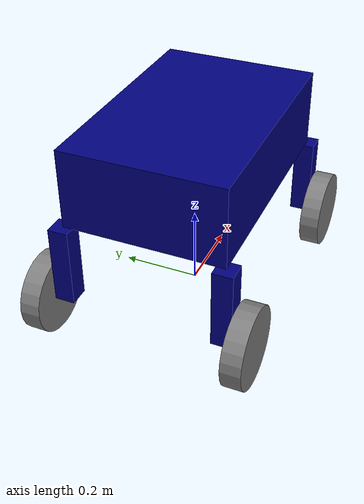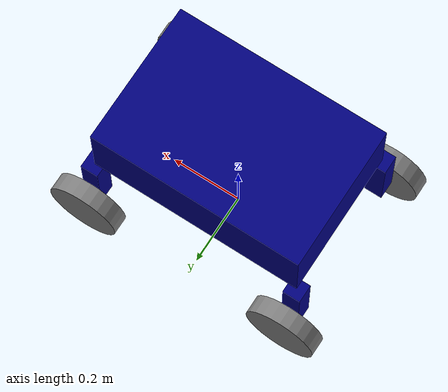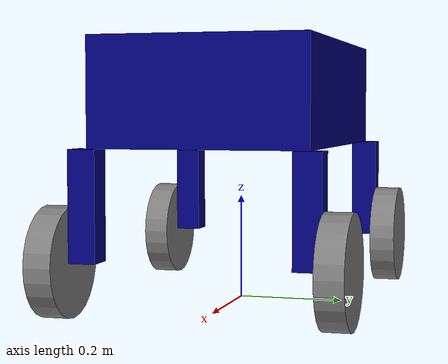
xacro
<?xml version="1.0"?>
<robot xmlns:xacro="http://www.ros.org/wiki/xacro">

    <xacro:include filename = "/home/tayya/four_wheel_ws/src/four_wheel_vehicle/urdf/common_properties.xacro"/>

    <xacro:property name="base_mass" value="5.0"/>
    <xacro:property name="base_length" value="0.6" />
    <xacro:property name="base_width" value="0.4" />
    <xacro:property name="base_height" value="0.2" />

    <xacro:property name="wheel_mass" value="1.0" />
    <xacro:property name="wheel_radius" value="0.1" />
    <xacro:property name="wheel_length" value="0.05" />

    <xacro:property name="holder_mass" value="1.0" />
    <xacro:property name="holder_x" value="0.2" />
    <xacro:property name="holder_y" value="0.05" />
    <xacro:property name="holder_z" value="0.05" />

    <material name="blue">
        <color rgba="0 0 0.5 1"/>
    </material>

    <material name="grey">
        <color rgba="0.5 0.5 0.5 1"/>
    </material>

    <material name = "orange">
        <color rgba="1.0 0.5 0 1" />
    </material>

    <material name = "yellow">
        <color rgba="1.0 1.0 0 1" />
    </material>

    <link name="base_footprint"/>

    <xacro:base_macro base_mass="${base_mass}" base_length = "${base_length}" base_width = "${base_width}" base_height = "${base_height}"/>

    <xacro:base_joint/>

    <xacro:wheel_holder_link_xacro prefix="front_left" holder_mass="${holder_mass}" holder_x="${holder_x}" holder_y="${holder_y}" holder_z="${holder_z}"/>
    <xacro:wheel_holder_link_xacro prefix="front_right" holder_mass="${holder_mass}" holder_x="${holder_x}" holder_y="${holder_y}" holder_z="${holder_z}"/>
    <xacro:wheel_holder_link_xacro prefix="rear_left" holder_mass="${holder_mass}" holder_x="${holder_x}" holder_y="${holder_y}" holder_z="${holder_z}"/>
    <xacro:wheel_holder_link_xacro prefix="rear_right" holder_mass="${holder_mass}" holder_x="${holder_x}" holder_y="${holder_y}" holder_z="${holder_z}"/>

    <xacro:wheel_link prefix = "front_left"  wheel_mass = "${wheel_mass}" wheel_radius = "${wheel_radius}" wheel_length="${wheel_length}"/>
    <xacro:wheel_link prefix = "front_right" wheel_mass = "${wheel_mass}" wheel_radius = "${wheel_radius}" wheel_length="${wheel_length}"/>
    <xacro:wheel_link prefix = "rear_left"   wheel_mass = "${wheel_mass}" wheel_radius = "${wheel_radius}" wheel_length="${wheel_length}"/>
    <xacro:wheel_link prefix = "rear_right"  wheel_mass = "${wheel_mass}" wheel_radius = "${wheel_radius}" wheel_length="${wheel_length}"/>

    <xacro:wheel_holder_joint prefix="front_left" x="0.3" y="0.2" z="-0.1"/>
    <xacro:wheel_holder_joint prefix="front_right" x="0.3" y="-0.2" z="-0.1"/>
    <xacro:wheel_holder_joint prefix="rear_left" x="-0.3" y="0.2" z="-0.1"/>
    <xacro:wheel_holder_joint prefix="rear_right" x="-0.3" y="-0.2" z="-0.1"/>

    <xacro:wheel_joint prefix="front_left" x="0.1" y="${holder_z}" z="0.0"/>
    <xacro:wheel_joint prefix="front_right" x="0.1" y="${-holder_z}" z="0.0"/>
    <xacro:wheel_joint prefix="rear_left" x="0.1" y="${holder_z}" z="0.0"/>
    <xacro:wheel_joint prefix="rear_right" x="0.1" y="${-holder_z}" z="0.0"/>

</robot>

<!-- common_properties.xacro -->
<robot xmlns:xacro="http://www.ros.org/wiki/xacro">

    <xacro:macro name = "base_macro" params="base_mass base_length base_width base_height">
        <link name="base_link">
            <visual>
                <geometry>
                    <box size="${base_length} ${base_width} ${base_height}"/>
                </geometry>
                <origin xyz="0 0 ${base_height / 2.0}" rpy="0 0 0"/>
                <material name="blue"/>
            </visual>
            <collision>
                <geometry>
                    <box size="${base_length} ${base_width} ${base_height}"/>
                </geometry>
                <origin xyz="0 0 ${base_height / 2.0}" rpy="0 0 0"/>
            </collision>
            <xacro:box_inertia m="5.0" l="${2*base_length}" w="${2*base_width}" h="${2*base_height}" xyz="0 0 ${base_height / 2.0}" rpy="0 0 0"/>
        </link>
    </xacro:macro>

    <xacro:macro name="wheel_holder_link_xacro" params="prefix holder_mass holder_x holder_y holder_z">
        <link name="${prefix}_wheel_holder_link">
            <visual>
                <geometry>
                    <box size="${holder_x} ${holder_y} ${holder_z}"/>
                </geometry>
                <origin xyz="0 0 0" rpy="0 0 0"/>
                <material name="blue"/>
            </visual>
            <collision>
                <geometry>
                    <box size="${holder_x} ${holder_y} ${holder_z}"/>
                </geometry>
                <origin xyz="0 0 0" rpy="0 0 0"/>
            </collision>
            <xacro:box_inertia m="${holder_mass}" l="${holder_x}" w="${holder_y}" h="${holder_z}" xyz="0 0 ${holder_z}" rpy="0 0 0"/>
        </link>
    </xacro:macro>

    <xacro:macro name = "wheel_link" params="prefix wheel_mass wheel_radius wheel_length">
        <link name="${prefix}_wheel_link">
            <visual>
                <geometry>
                    <cylinder radius="${wheel_radius}" length="${wheel_length}"/>
                </geometry>
                <origin xyz="0 0 0" rpy="1.5708 0 0"/>
                <material name="grey"/>
            </visual>
            <collision>
                <geometry>
                    <cylinder radius="${wheel_radius}" length="${wheel_length}"/>
                </geometry>
                <origin xyz="0 0 0" rpy="1.5708 0 0"/>
            </collision>
            <xacro:wheel_inertia m = "1.0" r = "${2*wheel_radius}" h = "${2*wheel_length}" xyz="0 0 0" rpy="1.5708 0 0"/>
        </link>
    </xacro:macro>

    <xacro:macro name = "box_inertia" params = "m l w h xyz rpy">
        <inertial>
            <origin xyz = "${xyz}" rpy = "${rpy}" />
            <mass value = "${m}" />
            <inertia ixx = "${(m/12) * (l*l+h*h)}" ixy = "0" ixz = "0"
            iyy = "${(m/12) * (l*l+h*h)}" iyz = "0"
            izz = "${(m/12) * (l*l+h*h)}"/>
        </inertial>
    </xacro:macro>

    <xacro:macro name = "wheel_inertia" params = "m r h xyz rpy">
        <inertial>
            <origin xyz = "${xyz}" rpy = "${rpy}" />
            <mass value = "${m}" />
            <inertia ixx = "${(m/12) * (3*r*r + h*h)}" ixy = "0" ixz = "0"
            iyy = "${(m/12) * (3*r*r + h*h)}" iyz = "0"
            izz = "${(m/12) * (3*r*r + h*h)}"/>
        </inertial>
    </xacro:macro>

    <xacro:macro name = "base_joint">
        <joint name="base_joint" type="fixed">
            <parent link="base_footprint"/>
            <child link="base_link"/>
            <origin xyz="0 0 ${wheel_radius + holder_x}" rpy="0 0 0"/>
        </joint>
    </xacro:macro>

    <xacro:macro name="wheel_holder_joint" params="prefix x y z">
        <joint name="${prefix}_wheel_holder_joint" type="continuous">
            <parent link="base_link"/>
            <child link="${prefix}_wheel_holder_link"/>
            <origin xyz="${x} ${y} ${z}" rpy="0 1.570796325 0"/>
        </joint>
    </xacro:macro>

    <xacro:macro name="wheel_joint" params="prefix x y z">
        <joint name="${prefix}_wheel_joint" type="continuous">
            <parent link="${prefix}_wheel_holder_link"/>
            <child link="${prefix}_wheel_link"/>
            <origin xyz="${x} ${y} ${z}" rpy="0 0 0"/>
            <axis xyz="0 1 0"/>
        </joint>
    </xacro:macro>

</robot>
